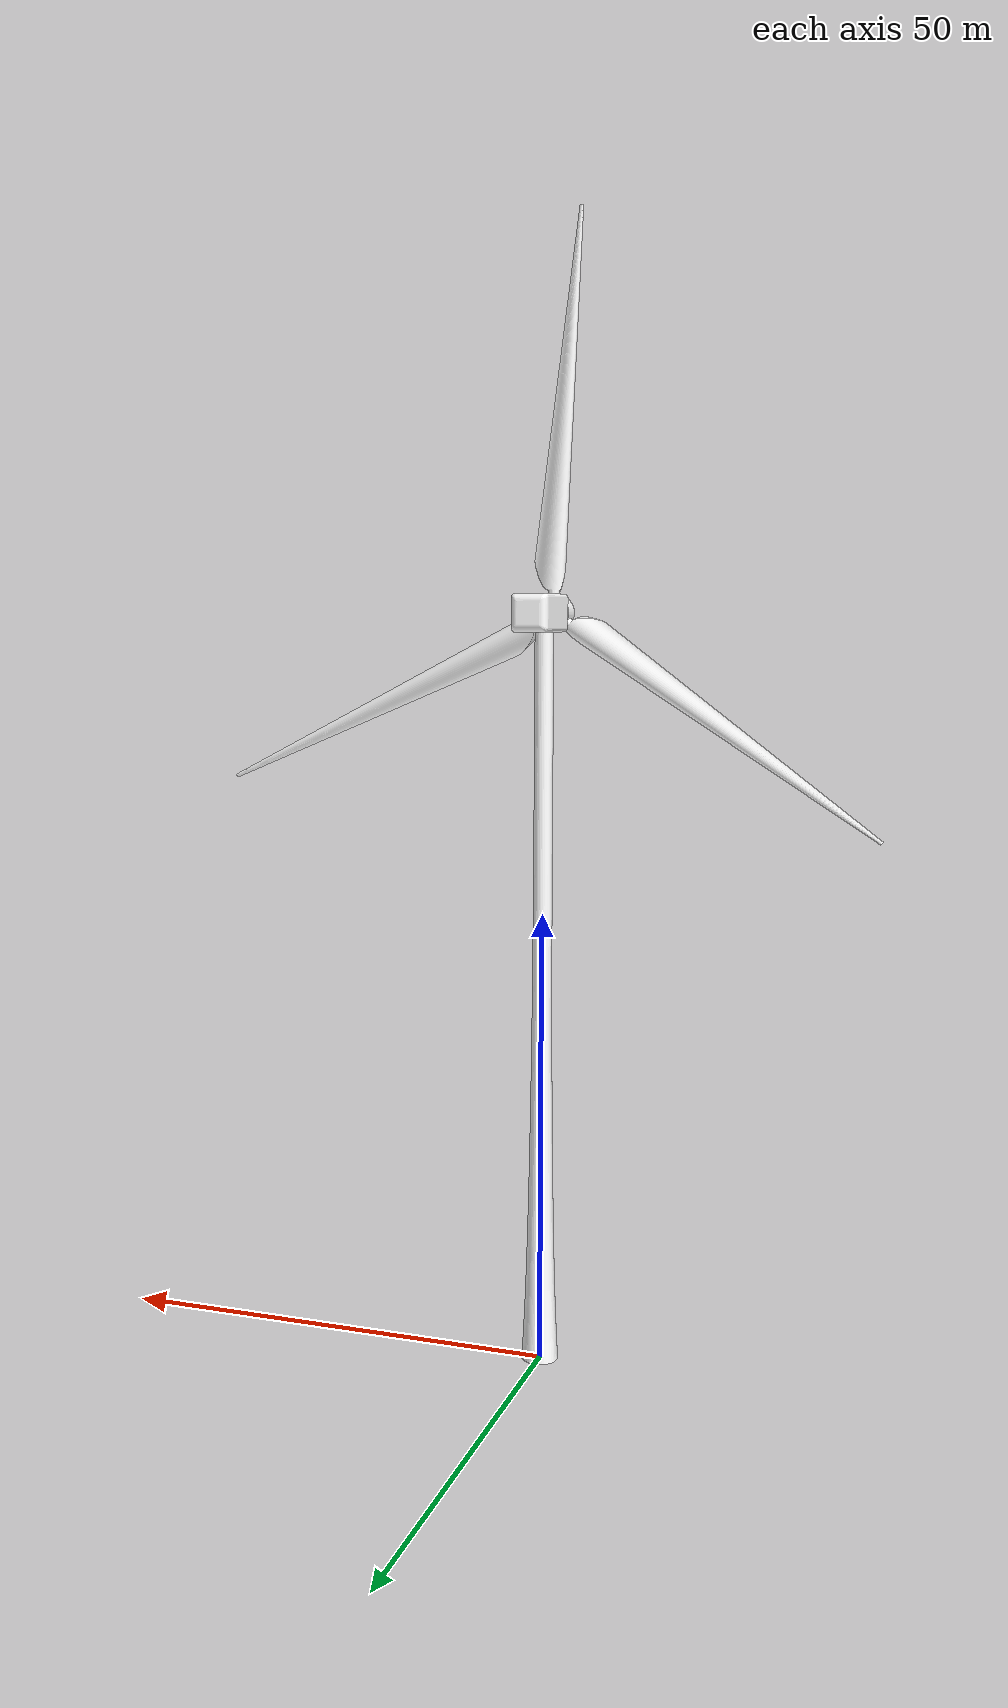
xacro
<?xml version="1.0" encoding="utf-8" ?>
<!-- |    This document was autogenerated by xacro from /home/zhitao/diskE/Project/homework2_summation/hw35_wind_ws/src/wind_generator_description/urdf/wind_generator.xacro | -->
<!-- |    EDITING THIS FILE BY HAND IS NOT RECOMMENDED                                 | -->
<robot name="wind_generator_description">
    <link name="wind_generator_base_link">

<inertial>
            <origin rpy="0 0 0" xyz="-7.10843281312989E-05 0.491296848849994 43.6344490261791" />
            <mass value="500408.414798168" />
            <inertia ixx="212632115.533089" ixy="10.9440050203581" ixz="377.864923222369" iyy="212166431.458184" iyz="-5110.69754849432" izz="1134023.34164054" />
        </inertial>

        <visual>
            <origin rpy="0 0 0" xyz="0 0 0" />
            <geometry>
                <mesh filename="/home/byz/WTBinspector_ws/src/fans_model/wind_generator_description/meshes/base_link.STL" />
            </geometry>
            <material name="">
                <color rgba="1 1 1 1" />
            </material>
        </visual>
        <collision>
            <origin rpy="0 0 0" xyz="0 0 0" />
            <geometry>
                <mesh filename="/home/byz/WTBinspector_ws/src/fans_model/wind_generator_description/meshes/base_link.STL" />
            </geometry>
        </collision>
    </link>
    <link name="wind_generator_rotor_link">

<inertial>
            <origin rpy="0 0 0" xyz="-2.75491345601564E-05 -1.39576441191558E-05 1.40740943504022" />
            <mass value="210138.068552735" />
            <inertia ixx="6446030.2620646" ixy="-18.2882221466862" ixz="-6.82734054048524" iyy="6446109.93502176" iyz="5.89207002545299" izz="12749400.3079152" />
        </inertial>

        <visual>
            <origin rpy="0 0 0" xyz="0 0 0" />
            <geometry>
                <mesh filename="/home/byz/WTBinspector_ws/src/fans_model/wind_generator_description/meshes/link1.STL" />
            </geometry>
            <material name="">
                <color rgba="1 1 1 1" />
            </material>
        </visual>
        <collision>
            <origin rpy="0 0 0" xyz="0 0 0" />
            <geometry>
                <mesh filename="/home/byz/WTBinspector_ws/src/fans_model/wind_generator_description/meshes/link1.STL" />
            </geometry>
        </collision>
    </link>
    <joint name="fans_joint" type="revolute">
        <origin rpy="1.5708 -0.064022 0" xyz="0.00010227 -1.9994 82.4" />
        <parent link="wind_generator_base_link" />
        <child link="wind_generator_rotor_link" />
        <axis xyz="0 0 1" />
        <limit effort="1000" lower="-10000" upper="10000" velocity="1.0" />
    </joint>

    <link name="wind_generator_world" />

    <joint name="base_joint" type="fixed">
        <origin rpy="0 0 0" xyz="0 0 0.01" />
        <parent link="wind_generator_world" />
        <child link="wind_generator_base_link" />
        <axis xyz="0 0 0" />
    </joint>

<transmission name="trans_fans_joint">
        <type>transmission_interface/SimpleTransmission</type>
        <joint name="fans_joint">
            <hardwareInterface>hardware_interface/PositionJointInterface</hardwareInterface>
        </joint>
        <actuator name="fans_joint_motor">
            <hardwareInterface>hardware_interface/PositionJointInterface</hardwareInterface>
            <mechanicalReduction>1</mechanicalReduction>
        </actuator>
    </transmission>
    <gazebo>
        <plugin name="wind_generator_pose_lock" filename="/home/byz/WTBinspector_ws/devel/lib/libwind_generator_pose_lock_plugin.so" />
        <plugin name="gazebo_ros_control" filename="libgazebo_ros_control.so">
            <robotNamespace>/</robotNamespace>
        </plugin>
    </gazebo>
</robot>
